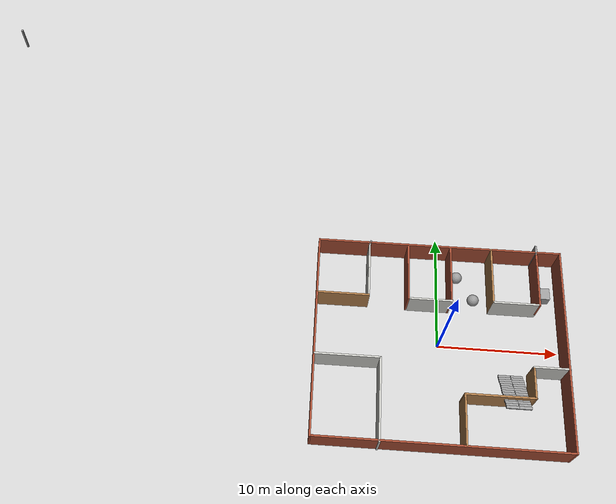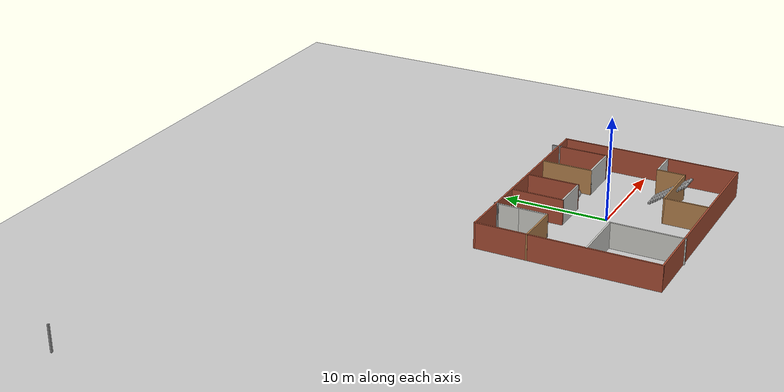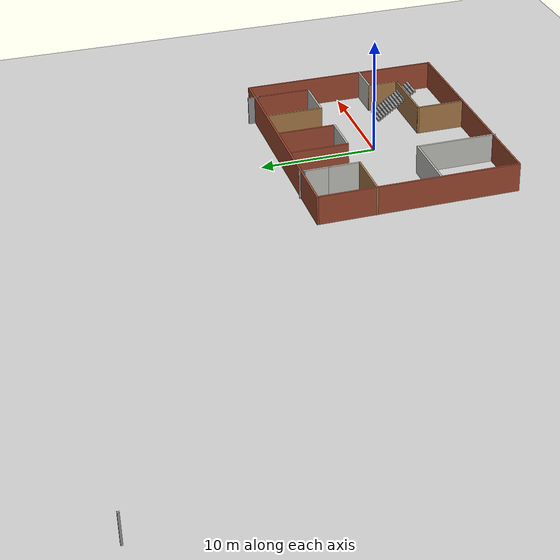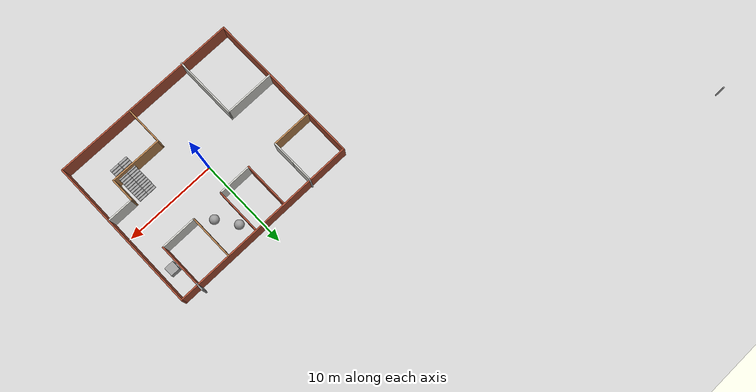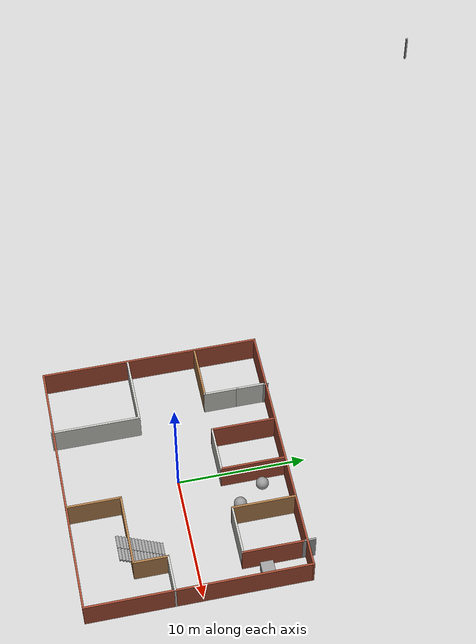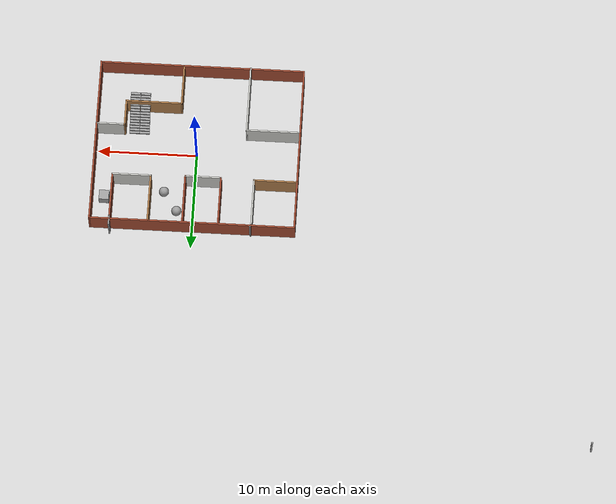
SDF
<sdf version="1.6">
 <world name="default">
  <light name="sun" type="directional">
   <pose>0 0 10 0 -0 0</pose>
   <diffuse>0.8 0.8 0.8 1</diffuse>
   <specular>0.2 0.2 0.2 1</specular>
   <attenuation>
    <range>1000</range>
    <constant>0.9</constant>
    <linear>0.01</linear>
    <quadratic>0.001</quadratic>
   </attenuation>
   <direction>-0.5 0.1 -0.9</direction>
  </light>
  <model name="ground_plane">
   <static>1</static>
   <link name="link">
    <collision name="collision">
     <geometry><plane><normal>0 0 1</normal><size>100 100</size></plane></geometry>
     <surface><friction><ode><mu>100</mu><mu2>50</mu2></ode></friction></surface>
    </collision>
    <visual name="visual">
     <cast_shadows>0</cast_shadows>
     <geometry><plane><normal>0 0 1</normal><size>100 100</size></plane></geometry>
     <material>
      <script><uri>file://media/materials/scripts/gazebo.material</uri><name>Gazebo/Grey</name></script>
     </material>
    </visual>
    <velocity_decay><linear>0</linear><angular>0</angular></velocity_decay>
   </link>
  </model>
  <physics name="default_physics" default="0" type="ode">
   <max_step_size>0.001</max_step_size>
   <real_time_factor>1</real_time_factor>
   <real_time_update_rate>1000</real_time_update_rate>
  </physics>
  <scene><ambient>0.4 0.4 0.4 1</ambient><background>0.7 0.7 0.7 1</background><shadows>1</shadows></scene>
  <spherical_coordinates>
   <surface_model>EARTH_WGS84</surface_model>
   <latitude_deg>0</latitude_deg>
   <longitude_deg>0</longitude_deg>
   <elevation>0</elevation>
   <heading_deg>0</heading_deg>
  </spherical_coordinates>
  <gravity>0 0 -9.8</gravity>
  <magnetic_field>6e-06 2.3e-05 -4.2e-05</magnetic_field>
  <atmosphere type="adiabatic"/>
  <model name="konetalo">
   <pose>-15.3354 10.2419 0 0 -0 0</pose>
   <link name="Wall_17">
    <collision name="Wall_17_Collision">
     <geometry><box><size>0.16 0.15 2.5</size></box></geometry>
     <pose>0 0 1.25 0 -0 0</pose>
    </collision>
    <visual name="Wall_17_Visual">
     <pose>0 0 1.25 0 -0 0</pose>
     <geometry><box><size>0.16 0.15 2.5</size></box></geometry>
     <material>
      <script><uri>file://media/materials/scripts/gazebo.material</uri><name>Gazebo/Grey</name></script>
      <ambient>1 1 1 1</ambient>
     </material>
    </visual>
    <pose>-25.5852 19.2022 0 0 -0 0</pose>
   </link>
   <link name="Wall_24">
    <collision name="Wall_24_Collision">
     <geometry><box><size>17.25 0.15 2.5</size></box></geometry>
     <pose>0 0 1.25 0 -0 0</pose>
    </collision>
    <visual name="Wall_24_Visual">
     <pose>0 0 1.25 0 -0 0</pose>
     <geometry><box><size>17.25 0.15 2.5</size></box></geometry>
     <material>
      <script><uri>file://media/materials/scripts/gazebo.material</uri><name>Gazebo/Bricks</name></script>
      <ambient>1 1 1 1</ambient>
     </material>
    </visual>
    <pose>4.97772 -10.548 0 0 0 -1.5708</pose>
   </link>
   <link name="Wall_25">
    <collision name="Wall_25_Collision">
     <geometry><box><size>20.75 0.15 2.5</size></box></geometry>
     <pose>0 0 1.25 0 -0 0</pose>
    </collision>
    <visual name="Wall_25_Visual">
     <pose>0 0 1.25 0 -0 0</pose>
     <geometry><box><size>20.75 0.15 2.5</size></box></geometry>
     <material>
      <script><uri>file://media/materials/scripts/gazebo.material</uri><name>Gazebo/Bricks</name></script>
      <ambient>1 1 1 1</ambient>
     </material>
    </visual>
    <pose>15.2777 -19.098 0 0 -0 0</pose>
   </link>
   <link name="Wall_26">
    <collision name="Wall_26_Collision">
     <geometry><box><size>17.25 0.15 2.5</size></box></geometry>
     <pose>0 0 1.25 0 -0 0</pose>
    </collision>
    <visual name="Wall_26_Visual">
     <pose>0 0 1.25 0 -0 0</pose>
     <geometry><box><size>17.25 0.15 2.5</size></box></geometry>
     <material>
      <script><uri>file://media/materials/scripts/gazebo.material</uri><name>Gazebo/Bricks</name></script>
      <ambient>1 1 1 1</ambient>
     </material>
    </visual>
    <pose>25.5777 -10.548 0 0 -0 1.5708</pose>
   </link>
   <link name="Wall_27">
    <collision name="Wall_27_Collision">
     <geometry><box><size>20.75 0.15 2.5</size></box></geometry>
     <pose>0 0 1.25 0 -0 0</pose>
    </collision>
    <visual name="Wall_27_Visual">
     <pose>0 0 1.25 0 -0 0</pose>
     <geometry><box><size>20.75 0.15 2.5</size></box></geometry>
     <material>
      <script><uri>file://media/materials/scripts/gazebo.material</uri><name>Gazebo/Bricks</name></script>
      <ambient>1 1 1 1</ambient>
     </material>
    </visual>
    <pose>15.2777 -1.99799 0 0 -0 3.14159</pose>
   </link>
   <link name="Wall_29">
    <collision name="Wall_29_Collision">
     <geometry><box><size>4.5 0.15 2.5</size></box></geometry>
     <pose>0 0 1.25 0 -0 0</pose>
    </collision>
    <visual name="Wall_29_Visual">
     <pose>0 0 1.25 0 -0 0</pose>
     <geometry><box><size>4.5 0.15 2.5</size></box></geometry>
     <material>
      <script><uri>file://media/materials/scripts/gazebo.material</uri><name>Gazebo/Wood</name></script>
      <ambient>1 1 1 1</ambient>
     </material>
    </visual>
    <pose>7.13803 -6.92522 0 0 -0 0</pose>
   </link>
   <link name="Wall_30">
    <collision name="Wall_30_Collision">
     <geometry><box><size>2.75 0.15 2.5</size></box></geometry>
     <pose>0 0 1.25 0 -0 0</pose>
    </collision>
    <visual name="Wall_30_Visual">
     <pose>0 0 1.25 0 -0 0</pose>
     <geometry><box><size>2.75 0.15 2.5</size></box></geometry>
     <material>
      <script><uri>file://media/materials/scripts/gazebo.material</uri><name>Gazebo/CeilingTiled</name></script>
      <ambient>1 0 0 1</ambient>
     </material>
    </visual>
    <pose>9.31303 -5.62522 0 0 -0 1.5708</pose>
   </link>
   <link name="Wall_31">
    <collision name="Wall_31_Collision">
     <geometry><box><size>2.25 0.15 2.5</size></box></geometry>
     <pose>0 0 1.25 0 -0 0</pose>
    </collision>
    <visual name="Wall_31_Visual">
     <pose>0 0 1.25 0 -0 0</pose>
     <geometry><box><size>2.25 0.15 2.5</size></box></geometry>
     <material>
      <script><uri>file://media/materials/scripts/gazebo.material</uri><name>Gazebo/CeilingTiled</name></script>
      <ambient>1 0 0 1</ambient>
     </material>
    </visual>
    <pose>9.31303 -3.27522 0 0 -0 1.5708</pose>
   </link>
   <link name="Wall_32">
    <collision name="Wall_32_Collision">
     <geometry><box><size>0.5 0.15 2.5</size></box></geometry>
     <pose>0 0 1.25 0 -0 0</pose>
    </collision>
    <visual name="Wall_32_Visual">
     <pose>0 0 1.25 0 -0 0</pose>
     <geometry><box><size>0.5 0.15 2.5</size></box></geometry>
     <material>
      <script><uri>file://media/materials/scripts/gazebo.material</uri><name>Gazebo/Grey</name></script>
      <ambient>1 1 1 1</ambient>
     </material>
    </visual>
    <pose>9.35832 -2.05618 0 0 -0 1.309</pose>
   </link>
   <link name="Wall_34">
    <collision name="Wall_34_Collision">
     <geometry><box><size>5 0.15 2.5</size></box></geometry>
     <pose>0 0 1.25 0 -0 0</pose>
    </collision>
    <visual name="Wall_34_Visual">
     <pose>0 0 1.25 0 -0 0</pose>
     <geometry><box><size>5 0.15 2.5</size></box></geometry>
     <material>
      <script><uri>file://media/materials/scripts/gazebo.material</uri><name>Gazebo/Bricks</name></script>
      <ambient>1 1 1 1</ambient>
     </material>
    </visual>
    <pose>12.6496 -4.57646 0 0 0 -1.5708</pose>
   </link>
   <link name="Wall_35">
    <collision name="Wall_35_Collision">
     <geometry><box><size>3.75 0.15 2.5</size></box></geometry>
     <pose>0 0 1.25 0 -0 0</pose>
    </collision>
    <visual name="Wall_35_Visual">
     <pose>0 0 1.25 0 -0 0</pose>
     <geometry><box><size>3.75 0.15 2.5</size></box></geometry>
     <material>
      <script><uri>file://media/materials/scripts/gazebo.material</uri><name>Gazebo/CeilingTiled</name></script>
      <ambient>0.435294 0.796078 0.67451 1</ambient>
     </material>
    </visual>
    <pose>14.4496 -7.00146 0 0 -0 0</pose>
   </link>
   <link name="Wall_36">
    <collision name="Wall_36_Collision">
     <geometry><box><size>5 0.15 2.5</size></box></geometry>
     <pose>0 0 1.25 0 -0 0</pose>
    </collision>
    <visual name="Wall_36_Visual">
     <pose>0 0 1.25 0 -0 0</pose>
     <geometry><box><size>5 0.15 2.5</size></box></geometry>
     <material>
      <script><uri>file://media/materials/scripts/gazebo.material</uri><name>Gazebo/Bricks</name></script>
      <ambient>1 1 1 1</ambient>
     </material>
    </visual>
    <pose>16.2496 -4.57646 0 0 -0 1.5708</pose>
   </link>
   <link name="Wall_38">
    <collision name="Wall_38_Collision">
     <geometry><box><size>5 0.15 2.5</size></box></geometry>
     <pose>0 0 1.25 0 -0 0</pose>
    </collision>
    <visual name="Wall_38_Visual">
     <pose>0 0 1.25 0 -0 0</pose>
     <geometry><box><size>5 0.15 2.5</size></box></geometry>
     <material>
      <script><uri>file://media/materials/scripts/gazebo.material</uri><name>Gazebo/Wood</name></script>
      <ambient>1 1 1 1</ambient>
     </material>
    </visual>
    <pose>19.7293 -4.45509 0 0 0 -1.5708</pose>
   </link>
   <link name="Wall_39">
    <collision name="Wall_39_Collision">
     <geometry><box><size>4 0.15 2.5</size></box></geometry>
     <pose>0 0 1.25 0 -0 0</pose>
    </collision>
    <visual name="Wall_39_Visual">
     <pose>0 0 1.25 0 -0 0</pose>
     <geometry><box><size>4 0.15 2.5</size></box></geometry>
     <material>
      <script><uri>file://media/materials/scripts/gazebo.material</uri><name>Gazebo/CeilingTiled</name></script>
      <ambient>1 1 1 1</ambient>
     </material>
    </visual>
    <pose>21.6543 -6.88009 0 0 -0 0</pose>
   </link>
   <link name="Wall_40">
    <collision name="Wall_40_Collision">
     <geometry><box><size>4.75 0.15 2.5</size></box></geometry>
     <pose>0 0 1.25 0 -0 0</pose>
    </collision>
    <visual name="Wall_40_Visual">
     <pose>0 0 1.25 0 -0 0</pose>
     <geometry><box><size>4.75 0.15 2.5</size></box></geometry>
     <material>
      <script><uri>file://media/materials/scripts/gazebo.material</uri><name>Gazebo/Bricks</name></script>
      <ambient>1 1 1 1</ambient>
     </material>
    </visual>
    <pose>23.5793 -4.58009 0 0 -0 1.5708</pose>
   </link>
   <link name="Wall_41">
    <collision name="Wall_41_Collision">
     <geometry><box><size>1 0.15 2.5</size></box></geometry>
     <pose>0 0 1.25 0 -0 0</pose>
    </collision>
    <visual name="Wall_41_Visual">
     <pose>0 0 1.25 0 -0 0</pose>
     <geometry><box><size>1 0.15 2.5</size></box></geometry>
     <material>
      <script><uri>file://media/materials/scripts/gazebo.material</uri><name>Gazebo/Grey</name></script>
      <ambient>1 1 1 1</ambient>
     </material>
    </visual>
    <pose>23.5793 -1.85509 0 0 -0 1.5708</pose>
   </link>
   <link name="Wall_46">
    <collision name="Wall_46_Collision">
     <geometry><box><size>4.25 0.15 2.5</size></box></geometry>
     <pose>0 0 1.25 0 -0 0</pose>
    </collision>
    <visual name="Wall_46_Visual">
     <pose>0 0 1.25 0 -0 0</pose>
     <geometry><box><size>4.25 0.15 2.5</size></box></geometry>
     <material>
      <script><uri>file://media/materials/scripts/gazebo.material</uri><name>Gazebo/Wood</name></script>
      <ambient>1 1 1 1</ambient>
     </material>
    </visual>
    <pose>17.1402 -16.9854 0 0 0 -1.5708</pose>
   </link>
   <link name="Wall_48">
    <collision name="Wall_48_Collision">
     <geometry><box><size>5.75 0.15 2.5</size></box></geometry>
     <pose>0 0 1.25 0 -0 0</pose>
    </collision>
    <visual name="Wall_48_Visual">
     <pose>0 0 1.25 0 -0 0</pose>
     <geometry><box><size>5.75 0.15 2.5</size></box></geometry>
     <material>
      <script><uri>file://media/materials/scripts/gazebo.material</uri><name>Gazebo/Wood</name></script>
      <ambient>1 1 1 1</ambient>
     </material>
    </visual>
    <pose>19.9402 -14.9354 0 0 -0 0</pose>
   </link>
   <link name="Wall_49">
    <collision name="Wall_49_Collision">
     <geometry><box><size>2.75 0.15 2.5</size></box></geometry>
     <pose>0 0 1.25 0 -0 0</pose>
    </collision>
    <visual name="Wall_49_Visual">
     <pose>0 0 1.25 0 -0 0</pose>
     <geometry><box><size>2.75 0.15 2.5</size></box></geometry>
     <material>
      <script><uri>file://media/materials/scripts/gazebo.material</uri><name>Gazebo/Wood</name></script>
      <ambient>1 1 1 1</ambient>
     </material>
    </visual>
    <pose>22.7402 -13.6354 0 0 -0 1.5708</pose>
   </link>
   <link name="Wall_54">
    <collision name="Wall_54_Collision">
     <geometry><box><size>3 0.15 2.5</size></box></geometry>
     <pose>0 0 1.25 0 -0 0</pose>
    </collision>
    <visual name="Wall_54_Visual">
     <pose>0 0 1.25 0 -0 0</pose>
     <geometry><box><size>3 0.15 2.5</size></box></geometry>
     <material>
      <script><uri>file://media/materials/scripts/gazebo.material</uri><name>Gazebo/CeilingTiled</name></script>
      <ambient>0.333333 1 0 1</ambient>
     </material>
    </visual>
    <pose>24.1652 -12.3354 0 0 -0 0</pose>
   </link>
   <link name="Wall_58">
    <collision name="Wall_58_Collision">
     <geometry><box><size>5.5 0.15 2.5</size></box></geometry>
     <pose>0 0 1.25 0 -0 0</pose>
    </collision>
    <visual name="Wall_58_Visual">
     <pose>0 0 1.25 0 -0 0</pose>
     <geometry><box><size>5.5 0.15 2.5</size></box></geometry>
     <material>
      <script><uri>file://media/materials/scripts/gazebo.material</uri><name>Gazebo/CeilingTiled</name></script>
      <ambient>0.333333 0.666667 1 1</ambient>
     </material>
    </visual>
    <pose>7.71565 -12.3522 0 0 -0 0</pose>
   </link>
   <link name="Wall_59">
    <collision name="Wall_59_Collision">
     <geometry><box><size>7 0.15 2.5</size></box></geometry>
     <pose>0 0 1.25 0 -0 0</pose>
    </collision>
    <visual name="Wall_59_Visual">
     <pose>0 0 1.25 0 -0 0</pose>
     <geometry><box><size>7 0.15 2.5</size></box></geometry>
     <material>
      <script><uri>file://media/materials/scripts/gazebo.material</uri><name>Gazebo/CeilingTiled</name></script>
      <ambient>0.333333 0.666667 1 1</ambient>
     </material>
    </visual>
    <pose>10.3907 -15.7772 0 0 0 -1.5708</pose>
   </link>
   <static>1</static>
  </model>
  <model name="konetalo_0">
   <pose>5.9917 -3.89254 0 0 -0 0</pose>
   <link name="Stairs_0">
    <visual name="Stairs_0_Visual_0">
     <pose>0.510092 1.63333 0.083333 0 -0 0</pose>
     <geometry><box><size>1 0.233333 0.166667</size></box></geometry>
     <material>
      <script><uri>file://media/materials/scripts/gazebo.material</uri><name>Gazebo/Grey</name></script>
      <ambient>1 1 1 1</ambient>
     </material>
    </visual>
    <collision name="Stairs_0_Collision_0">
     <geometry><box><size>1 0.233333 0.166667</size></box></geometry>
     <pose>0.510092 1.63333 0.083333 0 -0 0</pose>
    </collision>
    <visual name="Stairs_0_Visual_1">
     <pose>0.510092 1.4 0.25 0 -0 0</pose>
     <geometry><box><size>1 0.233333 0.166667</size></box></geometry>
     <material>
      <script><uri>file://media/materials/scripts/gazebo.material</uri><name>Gazebo/Grey</name></script>
      <ambient>1 1 1 1</ambient>
     </material>
    </visual>
    <collision name="Stairs_0_Collision_1">
     <geometry><box><size>1 0.233333 0.166667</size></box></geometry>
     <pose>0.510092 1.4 0.25 0 -0 0</pose>
    </collision>
    <visual name="Stairs_0_Visual_2">
     <pose>0.510092 1.16667 0.416667 0 -0 0</pose>
     <geometry><box><size>1 0.233333 0.166667</size></box></geometry>
     <material>
      <script><uri>file://media/materials/scripts/gazebo.material</uri><name>Gazebo/Grey</name></script>
      <ambient>1 1 1 1</ambient>
     </material>
    </visual>
    <collision name="Stairs_0_Collision_2">
     <geometry><box><size>1 0.233333 0.166667</size></box></geometry>
     <pose>0.510092 1.16667 0.416667 0 -0 0</pose>
    </collision>
    <visual name="Stairs_0_Visual_3">
     <pose>0.510092 0.933333 0.583333 0 -0 0</pose>
     <geometry><box><size>1 0.233333 0.166667</size></box></geometry>
     <material>
      <script><uri>file://media/materials/scripts/gazebo.material</uri><name>Gazebo/Grey</name></script>
      <ambient>1 1 1 1</ambient>
     </material>
    </visual>
    <collision name="Stairs_0_Collision_3">
     <geometry><box><size>1 0.233333 0.166667</size></box></geometry>
     <pose>0.510092 0.933333 0.583333 0 -0 0</pose>
    </collision>
    <visual name="Stairs_0_Visual_4">
     <pose>0.510092 0.7 0.75 0 -0 0</pose>
     <geometry><box><size>1 0.233333 0.166667</size></box></geometry>
     <material>
      <script><uri>file://media/materials/scripts/gazebo.material</uri><name>Gazebo/Grey</name></script>
      <ambient>1 1 1 1</ambient>
     </material>
    </visual>
    <collision name="Stairs_0_Collision_4">
     <geometry><box><size>1 0.233333 0.166667</size></box></geometry>
     <pose>0.510092 0.7 0.75 0 -0 0</pose>
    </collision>
    <visual name="Stairs_0_Visual_5">
     <pose>0.510092 0.466667 0.916667 0 -0 0</pose>
     <geometry><box><size>1 0.233333 0.166667</size></box></geometry>
     <material>
      <script><uri>file://media/materials/scripts/gazebo.material</uri><name>Gazebo/Grey</name></script>
      <ambient>1 1 1 1</ambient>
     </material>
    </visual>
    <collision name="Stairs_0_Collision_5">
     <geometry><box><size>1 0.233333 0.166667</size></box></geometry>
     <pose>0.510092 0.466667 0.916667 0 -0 0</pose>
    </collision>
    <visual name="Stairs_0_Visual_6">
     <pose>0.510092 0.233333 1.08333 0 -0 0</pose>
     <geometry><box><size>1 0.233333 0.166667</size></box></geometry>
     <material>
      <script><uri>file://media/materials/scripts/gazebo.material</uri><name>Gazebo/Grey</name></script>
      <ambient>1 1 1 1</ambient>
     </material>
    </visual>
    <collision name="Stairs_0_Collision_6">
     <geometry><box><size>1 0.233333 0.166667</size></box></geometry>
     <pose>0.510092 0.233333 1.08333 0 -0 0</pose>
    </collision>
    <visual name="Stairs_0_Visual_7">
     <pose>0.510092 0 1.25 0 -0 0</pose>
     <geometry><box><size>1 0.233333 0.166667</size></box></geometry>
     <material>
      <script><uri>file://media/materials/scripts/gazebo.material</uri><name>Gazebo/Grey</name></script>
      <ambient>1 1 1 1</ambient>
     </material>
    </visual>
    <collision name="Stairs_0_Collision_7">
     <geometry><box><size>1 0.233333 0.166667</size></box></geometry>
     <pose>0.510092 0 1.25 0 -0 0</pose>
    </collision>
    <visual name="Stairs_0_Visual_8">
     <pose>0.510092 -0.233334 1.41667 0 -0 0</pose>
     <geometry><box><size>1 0.233333 0.166667</size></box></geometry>
     <material>
      <script><uri>file://media/materials/scripts/gazebo.material</uri><name>Gazebo/Grey</name></script>
      <ambient>1 1 1 1</ambient>
     </material>
    </visual>
    <collision name="Stairs_0_Collision_8">
     <geometry><box><size>1 0.233333 0.166667</size></box></geometry>
     <pose>0.510092 -0.233334 1.41667 0 -0 0</pose>
    </collision>
    <visual name="Stairs_0_Visual_9">
     <pose>0.510092 -0.466667 1.58333 0 -0 0</pose>
     <geometry><box><size>1 0.233333 0.166667</size></box></geometry>
     <material>
      <script><uri>file://media/materials/scripts/gazebo.material</uri><name>Gazebo/Grey</name></script>
      <ambient>1 1 1 1</ambient>
     </material>
    </visual>
    <collision name="Stairs_0_Collision_9">
     <geometry><box><size>1 0.233333 0.166667</size></box></geometry>
     <pose>0.510092 -0.466667 1.58333 0 -0 0</pose>
    </collision>
    <visual name="Stairs_0_Visual_10">
     <pose>0.510092 -0.7 1.75 0 -0 0</pose>
     <geometry><box><size>1 0.233333 0.166667</size></box></geometry>
     <material>
      <script><uri>file://media/materials/scripts/gazebo.material</uri><name>Gazebo/Grey</name></script>
      <ambient>1 1 1 1</ambient>
     </material>
    </visual>
    <collision name="Stairs_0_Collision_10">
     <geometry><box><size>1 0.233333 0.166667</size></box></geometry>
     <pose>0.510092 -0.7 1.75 0 -0 0</pose>
    </collision>
    <visual name="Stairs_0_Visual_11">
     <pose>0.510092 -0.933333 1.91667 0 -0 0</pose>
     <geometry><box><size>1 0.233333 0.166667</size></box></geometry>
     <material>
      <script><uri>file://media/materials/scripts/gazebo.material</uri><name>Gazebo/Grey</name></script>
      <ambient>1 1 1 1</ambient>
     </material>
    </visual>
    <collision name="Stairs_0_Collision_11">
     <geometry><box><size>1 0.233333 0.166667</size></box></geometry>
     <pose>0.510092 -0.933333 1.91667 0 -0 0</pose>
    </collision>
    <visual name="Stairs_0_Visual_12">
     <pose>0.510092 -1.16667 2.08333 0 -0 0</pose>
     <geometry><box><size>1 0.233333 0.166667</size></box></geometry>
     <material>
      <script><uri>file://media/materials/scripts/gazebo.material</uri><name>Gazebo/Grey</name></script>
      <ambient>1 1 1 1</ambient>
     </material>
    </visual>
    <collision name="Stairs_0_Collision_12">
     <geometry><box><size>1 0.233333 0.166667</size></box></geometry>
     <pose>0.510092 -1.16667 2.08333 0 -0 0</pose>
    </collision>
    <visual name="Stairs_0_Visual_13">
     <pose>0.510092 -1.4 2.25 0 -0 0</pose>
     <geometry><box><size>1 0.233333 0.166667</size></box></geometry>
     <material>
      <script><uri>file://media/materials/scripts/gazebo.material</uri><name>Gazebo/Grey</name></script>
      <ambient>1 1 1 1</ambient>
     </material>
    </visual>
    <collision name="Stairs_0_Collision_13">
     <geometry><box><size>1 0.233333 0.166667</size></box></geometry>
     <pose>0.510092 -1.4 2.25 0 -0 0</pose>
    </collision>
    <visual name="Stairs_0_Visual_14">
     <pose>0.510092 -1.63333 2.41667 0 -0 0</pose>
     <geometry><box><size>1 0.233333 0.166667</size></box></geometry>
     <material>
      <script><uri>file://media/materials/scripts/gazebo.material</uri><name>Gazebo/Grey</name></script>
      <ambient>1 1 1 1</ambient>
     </material>
    </visual>
    <collision name="Stairs_0_Collision_14">
     <geometry><box><size>1 0.233333 0.166667</size></box></geometry>
     <pose>0.510092 -1.63333 2.41667 0 -0 0</pose>
    </collision>
   </link>
   <link name="Stairs_1">
    <visual name="Stairs_1_Visual_0">
     <pose>-0.510092 1.63333 0.083333 0 -0 0</pose>
     <geometry><box><size>1 0.233333 0.166667</size></box></geometry>
     <material>
      <script><uri>file://media/materials/scripts/gazebo.material</uri><name>Gazebo/Grey</name></script>
      <ambient>1 1 1 1</ambient>
     </material>
    </visual>
    <collision name="Stairs_1_Collision_0">
     <geometry><box><size>1 0.233333 0.166667</size></box></geometry>
     <pose>-0.510092 1.63333 0.083333 0 -0 0</pose>
    </collision>
    <visual name="Stairs_1_Visual_1">
     <pose>-0.510092 1.4 0.25 0 -0 0</pose>
     <geometry><box><size>1 0.233333 0.166667</size></box></geometry>
     <material>
      <script><uri>file://media/materials/scripts/gazebo.material</uri><name>Gazebo/Grey</name></script>
      <ambient>1 1 1 1</ambient>
     </material>
    </visual>
    <collision name="Stairs_1_Collision_1">
     <geometry><box><size>1 0.233333 0.166667</size></box></geometry>
     <pose>-0.510092 1.4 0.25 0 -0 0</pose>
    </collision>
    <visual name="Stairs_1_Visual_2">
     <pose>-0.510092 1.16667 0.416667 0 -0 0</pose>
     <geometry><box><size>1 0.233333 0.166667</size></box></geometry>
     <material>
      <script><uri>file://media/materials/scripts/gazebo.material</uri><name>Gazebo/Grey</name></script>
      <ambient>1 1 1 1</ambient>
     </material>
    </visual>
    <collision name="Stairs_1_Collision_2">
     <geometry><box><size>1 0.233333 0.166667</size></box></geometry>
     <pose>-0.510092 1.16667 0.416667 0 -0 0</pose>
    </collision>
    <visual name="Stairs_1_Visual_3">
     <pose>-0.510092 0.933333 0.583333 0 -0 0</pose>
     <geometry><box><size>1 0.233333 0.166667</size></box></geometry>
     <material>
      <script><uri>file://media/materials/scripts/gazebo.material</uri><name>Gazebo/Grey</name></script>
      <ambient>1 1 1 1</ambient>
     </material>
    </visual>
    <collision name="Stairs_1_Collision_3">
     <geometry><box><size>1 0.233333 0.166667</size></box></geometry>
     <pose>-0.510092 0.933333 0.583333 0 -0 0</pose>
    </collision>
    <visual name="Stairs_1_Visual_4">
     <pose>-0.510092 0.7 0.75 0 -0 0</pose>
     <geometry><box><size>1 0.233333 0.166667</size></box></geometry>
     <material>
      <script><uri>file://media/materials/scripts/gazebo.material</uri><name>Gazebo/Grey</name></script>
      <ambient>1 1 1 1</ambient>
     </material>
    </visual>
    <collision name="Stairs_1_Collision_4">
     <geometry><box><size>1 0.233333 0.166667</size></box></geometry>
     <pose>-0.510092 0.7 0.75 0 -0 0</pose>
    </collision>
    <visual name="Stairs_1_Visual_5">
     <pose>-0.510092 0.466667 0.916667 0 -0 0</pose>
     <geometry><box><size>1 0.233333 0.166667</size></box></geometry>
     <material>
      <script><uri>file://media/materials/scripts/gazebo.material</uri><name>Gazebo/Grey</name></script>
      <ambient>1 1 1 1</ambient>
     </material>
    </visual>
    <collision name="Stairs_1_Collision_5">
     <geometry><box><size>1 0.233333 0.166667</size></box></geometry>
     <pose>-0.510092 0.466667 0.916667 0 -0 0</pose>
    </collision>
    <visual name="Stairs_1_Visual_6">
     <pose>-0.510092 0.233333 1.08333 0 -0 0</pose>
     <geometry><box><size>1 0.233333 0.166667</size></box></geometry>
     <material>
      <script><uri>file://media/materials/scripts/gazebo.material</uri><name>Gazebo/Grey</name></script>
      <ambient>1 1 1 1</ambient>
     </material>
    </visual>
    <collision name="Stairs_1_Collision_6">
     <geometry><box><size>1 0.233333 0.166667</size></box></geometry>
     <pose>-0.510092 0.233333 1.08333 0 -0 0</pose>
    </collision>
    <visual name="Stairs_1_Visual_7">
     <pose>-0.510092 0 1.25 0 -0 0</pose>
     <geometry><box><size>1 0.233333 0.166667</size></box></geometry>
     <material>
      <script><uri>file://media/materials/scripts/gazebo.material</uri><name>Gazebo/Grey</name></script>
      <ambient>1 1 1 1</ambient>
     </material>
    </visual>
    <collision name="Stairs_1_Collision_7">
     <geometry><box><size>1 0.233333 0.166667</size></box></geometry>
     <pose>-0.510092 0 1.25 0 -0 0</pose>
    </collision>
    <visual name="Stairs_1_Visual_8">
     <pose>-0.510092 -0.233334 1.41667 0 -0 0</pose>
     <geometry><box><size>1 0.233333 0.166667</size></box></geometry>
     <material>
      <script><uri>file://media/materials/scripts/gazebo.material</uri><name>Gazebo/Grey</name></script>
      <ambient>1 1 1 1</ambient>
     </material>
    </visual>
    <collision name="Stairs_1_Collision_8">
     <geometry><box><size>1 0.233333 0.166667</size></box></geometry>
     <pose>-0.510092 -0.233334 1.41667 0 -0 0</pose>
    </collision>
    <visual name="Stairs_1_Visual_9">
     <pose>-0.510092 -0.466667 1.58333 0 -0 0</pose>
     <geometry><box><size>1 0.233333 0.166667</size></box></geometry>
     <material>
      <script><uri>file://media/materials/scripts/gazebo.material</uri><name>Gazebo/Grey</name></script>
      <ambient>1 1 1 1</ambient>
     </material>
    </visual>
    <collision name="Stairs_1_Collision_9">
     <geometry><box><size>1 0.233333 0.166667</size></box></geometry>
     <pose>-0.510092 -0.466667 1.58333 0 -0 0</pose>
    </collision>
    <visual name="Stairs_1_Visual_10">
     <pose>-0.510092 -0.7 1.75 0 -0 0</pose>
     <geometry><box><size>1 0.233333 0.166667</size></box></geometry>
     <material>
      <script><uri>file://media/materials/scripts/gazebo.material</uri><name>Gazebo/Grey</name></script>
      <ambient>1 1 1 1</ambient>
     </material>
    </visual>
    <collision name="Stairs_1_Collision_10">
     <geometry><box><size>1 0.233333 0.166667</size></box></geometry>
     <pose>-0.510092 -0.7 1.75 0 -0 0</pose>
    </collision>
    <visual name="Stairs_1_Visual_11">
     <pose>-0.510092 -0.933333 1.91667 0 -0 0</pose>
     <geometry><box><size>1 0.233333 0.166667</size></box></geometry>
     <material>
      <script><uri>file://media/materials/scripts/gazebo.material</uri><name>Gazebo/Grey</name></script>
      <ambient>1 1 1 1</ambient>
     </material>
    </visual>
    <collision name="Stairs_1_Collision_11">
     <geometry><box><size>1 0.233333 0.166667</size></box></geometry>
     <pose>-0.510092 -0.933333 1.91667 0 -0 0</pose>
    </collision>
    <visual name="Stairs_1_Visual_12">
     <pose>-0.510092 -1.16667 2.08333 0 -0 0</pose>
     <geometry><box><size>1 0.233333 0.166667</size></box></geometry>
     <material>
      <script><uri>file://media/materials/scripts/gazebo.material</uri><name>Gazebo/Grey</name></script>
      <ambient>1 1 1 1</ambient>
     </material>
    </visual>
    <collision name="Stairs_1_Collision_12">
     <geometry><box><size>1 0.233333 0.166667</size></box></geometry>
     <pose>-0.510092 -1.16667 2.08333 0 -0 0</pose>
    </collision>
    <visual name="Stairs_1_Visual_13">
     <pose>-0.510092 -1.4 2.25 0 -0 0</pose>
     <geometry><box><size>1 0.233333 0.166667</size></box></geometry>
     <material>
      <script><uri>file://media/materials/scripts/gazebo.material</uri><name>Gazebo/Grey</name></script>
      <ambient>1 1 1 1</ambient>
     </material>
    </visual>
    <collision name="Stairs_1_Collision_13">
     <geometry><box><size>1 0.233333 0.166667</size></box></geometry>
     <pose>-0.510092 -1.4 2.25 0 -0 0</pose>
    </collision>
    <visual name="Stairs_1_Visual_14">
     <pose>-0.510092 -1.63333 2.41667 0 -0 0</pose>
     <geometry><box><size>1 0.233333 0.166667</size></box></geometry>
     <material>
      <script><uri>file://media/materials/scripts/gazebo.material</uri><name>Gazebo/Grey</name></script>
      <ambient>1 1 1 1</ambient>
     </material>
    </visual>
    <collision name="Stairs_1_Collision_14">
     <geometry><box><size>1 0.233333 0.166667</size></box></geometry>
     <pose>-0.510092 -1.63333 2.41667 0 -0 0</pose>
    </collision>
   </link>
   <static>1</static>
  </model>
  <model name="unit_sphere_0_0">
   <pose>3.05135 4.26438 0.5 0 -0 0</pose>
   <link name="link">
    <inertial>
     <mass>1</mass>
     <inertia><ixx>0.1</ixx><ixy>0</ixy><ixz>0</ixz><iyy>0.1</iyy><iyz>0</iyz><izz>0.1</izz></inertia>
    </inertial>
    <collision name="collision"><geometry><sphere><radius>0.5</radius></sphere></geometry></collision>
    <visual name="visual">
     <geometry><sphere><radius>0.5</radius></sphere></geometry>
     <material>
      <script><name>Gazebo/Grey</name><uri>file://media/materials/scripts/gazebo.material</uri></script>
     </material>
    </visual>
   </link>
  </model>
  <model name="unit_sphere_0_1">
   <pose>1.66508 6.28657 0.5 0 -0 0</pose>
   <link name="link">
    <inertial>
     <mass>1</mass>
     <inertia><ixx>0.1</ixx><ixy>0</ixy><ixz>0</ixz><iyy>0.1</iyy><iyz>0</iyz><izz>0.1</izz></inertia>
    </inertial>
    <collision name="collision"><geometry><sphere><radius>0.5</radius></sphere></geometry></collision>
    <visual name="visual">
     <geometry><sphere><radius>0.5</radius></sphere></geometry>
     <material>
      <script><name>Gazebo/Grey</name><uri>file://media/materials/scripts/gazebo.material</uri></script>
     </material>
    </visual>
   </link>
  </model>
  <model name="unit_box_0">
   <pose>9.04102 5.08765 0.5 0 -0 0</pose>
   <link name="link">
    <inertial>
     <mass>1</mass>
     <inertia>
      <ixx>0.166667</ixx>
      <ixy>0</ixy>
      <ixz>0</ixz>
      <iyy>0.166667</iyy>
      <iyz>0</iyz>
      <izz>0.166667</izz>
     </inertia>
    </inertial>
    <collision name="collision"><geometry><box><size>1 1 1</size></box></geometry></collision>
    <visual name="visual">
     <geometry><box><size>1 1 1</size></box></geometry>
     <material>
      <script><name>Gazebo/Grey</name><uri>file://media/materials/scripts/gazebo.material</uri></script>
     </material>
    </visual>
   </link>
  </model>
 </world>
</sdf>
